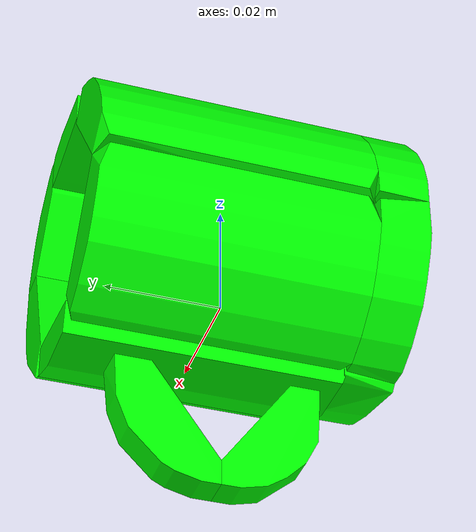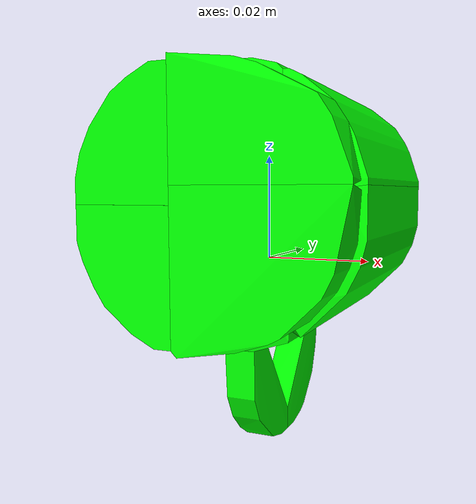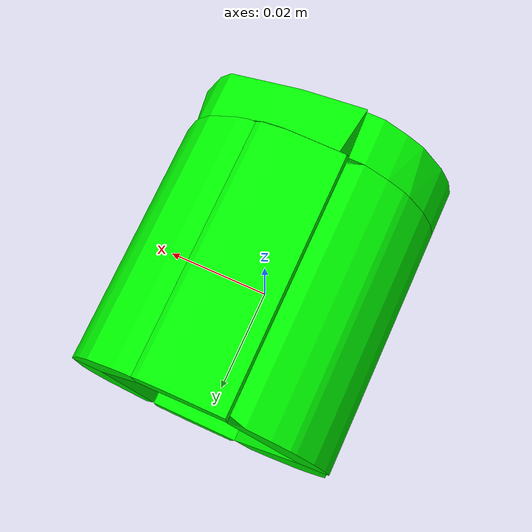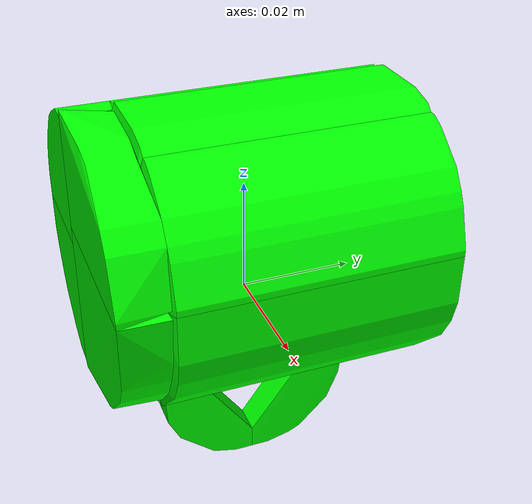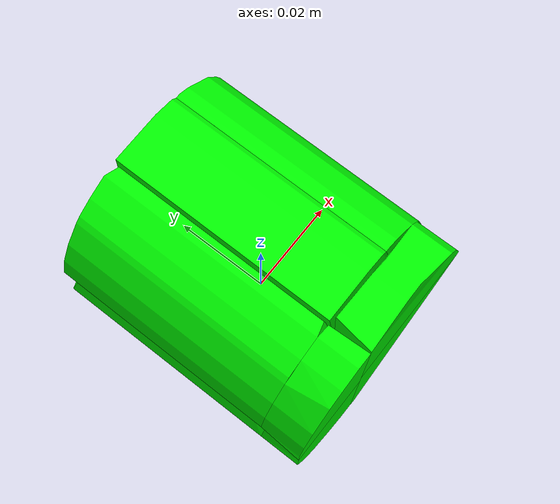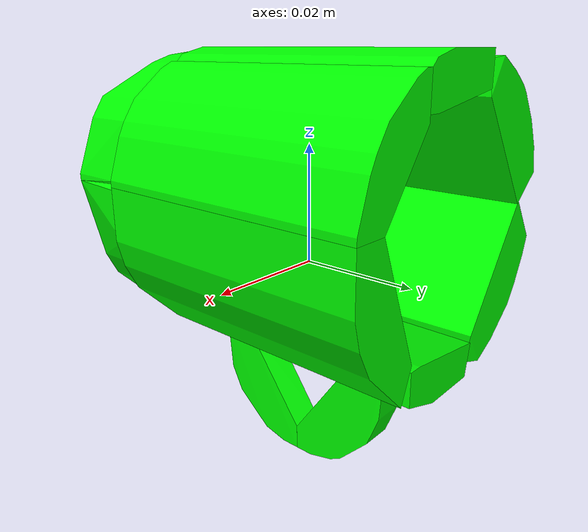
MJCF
<mujoco model="shapenet9-19">
  <asset>
    <mesh file="meshes/shapenet9-19/shapenet9-19_0.stl" name="shapenet9-19_0" scale="0.1 0.1 0.1"/>
    <mesh file="meshes/shapenet9-19/shapenet9-19_1.stl" name="shapenet9-19_1" scale="0.1 0.1 0.1"/>
    <mesh file="meshes/shapenet9-19/shapenet9-19_2.stl" name="shapenet9-19_2" scale="0.1 0.1 0.1"/>
    <mesh file="meshes/shapenet9-19/shapenet9-19_3.stl" name="shapenet9-19_3" scale="0.1 0.1 0.1"/>
    <mesh file="meshes/shapenet9-19/shapenet9-19_4.stl" name="shapenet9-19_4" scale="0.1 0.1 0.1"/>
    <mesh file="meshes/shapenet9-19/shapenet9-19_5.stl" name="shapenet9-19_5" scale="0.1 0.1 0.1"/>
    <mesh file="meshes/shapenet9-19/shapenet9-19_6.stl" name="shapenet9-19_6" scale="0.1 0.1 0.1"/>
    <mesh file="meshes/shapenet9-19/shapenet9-19_7.stl" name="shapenet9-19_7" scale="0.1 0.1 0.1"/>
    <mesh file="meshes/shapenet9-19/shapenet9-19_8.stl" name="shapenet9-19_8" scale="0.1 0.1 0.1"/>
    <mesh file="meshes/shapenet9-19/shapenet9-19_9.stl" name="shapenet9-19_9" scale="0.1 0.1 0.1"/>
    <mesh file="meshes/shapenet9-19/shapenet9-19_10.stl" name="shapenet9-19_10" scale="0.1 0.1 0.1"/>
    <mesh file="meshes/shapenet9-19/shapenet9-19_11.stl" name="shapenet9-19_11" scale="0.1 0.1 0.1"/>
  </asset>
  <worldbody>
    <body>
      <body name="collision">
        <geom pos="0 0 0" mesh="shapenet9-19_0" type="mesh" solimp="0.998 0.998 0.001" solref="0.001 1" density="100" friction="0.95 0.3 0.1" rgba="0 1 0 1" group="1" condim="4"/>
        <geom pos="0 0 0" mesh="shapenet9-19_1" type="mesh" solimp="0.998 0.998 0.001" solref="0.001 1" density="100" friction="0.95 0.3 0.1" rgba="0 1 0 1" group="1" condim="4"/>
        <geom pos="0 0 0" mesh="shapenet9-19_2" type="mesh" solimp="0.998 0.998 0.001" solref="0.001 1" density="100" friction="0.95 0.3 0.1" rgba="0 1 0 1" group="1" condim="4"/>
        <geom pos="0 0 0" mesh="shapenet9-19_3" type="mesh" solimp="0.998 0.998 0.001" solref="0.001 1" density="100" friction="0.95 0.3 0.1" rgba="0 1 0 1" group="1" condim="4"/>
        <geom pos="0 0 0" mesh="shapenet9-19_4" type="mesh" solimp="0.998 0.998 0.001" solref="0.001 1" density="100" friction="0.95 0.3 0.1" rgba="0 1 0 1" group="1" condim="4"/>
        <geom pos="0 0 0" mesh="shapenet9-19_5" type="mesh" solimp="0.998 0.998 0.001" solref="0.001 1" density="100" friction="0.95 0.3 0.1" rgba="0 1 0 1" group="1" condim="4"/>
        <geom pos="0 0 0" mesh="shapenet9-19_6" type="mesh" solimp="0.998 0.998 0.001" solref="0.001 1" density="100" friction="0.95 0.3 0.1" rgba="0 1 0 1" group="1" condim="4"/>
        <geom pos="0 0 0" mesh="shapenet9-19_7" type="mesh" solimp="0.998 0.998 0.001" solref="0.001 1" density="100" friction="0.95 0.3 0.1" rgba="0 1 0 1" group="1" condim="4"/>
        <geom pos="0 0 0" mesh="shapenet9-19_8" type="mesh" solimp="0.998 0.998 0.001" solref="0.001 1" density="100" friction="0.95 0.3 0.1" rgba="0 1 0 1" group="1" condim="4"/>
        <geom pos="0 0 0" mesh="shapenet9-19_9" type="mesh" solimp="0.998 0.998 0.001" solref="0.001 1" density="100" friction="0.95 0.3 0.1" rgba="0 1 0 1" group="1" condim="4"/>
        <geom pos="0 0 0" mesh="shapenet9-19_10" type="mesh" solimp="0.998 0.998 0.001" solref="0.001 1" density="100" friction="0.95 0.3 0.1" rgba="0 1 0 1" group="1" condim="4"/>
        <geom pos="0 0 0" mesh="shapenet9-19_11" type="mesh" solimp="0.998 0.998 0.001" solref="0.001 1" density="100" friction="0.95 0.3 0.1" rgba="0 1 0 1" group="1" condim="4"/>
      </body>
      <body name="visual">
        <geom pos="0 0 0" mesh="shapenet9-19_0" type="mesh" rgba="0 1 0 1" conaffinity="0" contype="0" group="0" mass="0.0001"/>
        <geom pos="0 0 0" mesh="shapenet9-19_1" type="mesh" rgba="0 1 0 1" conaffinity="0" contype="0" group="0" mass="0.0001"/>
        <geom pos="0 0 0" mesh="shapenet9-19_2" type="mesh" rgba="0 1 0 1" conaffinity="0" contype="0" group="0" mass="0.0001"/>
        <geom pos="0 0 0" mesh="shapenet9-19_3" type="mesh" rgba="0 1 0 1" conaffinity="0" contype="0" group="0" mass="0.0001"/>
        <geom pos="0 0 0" mesh="shapenet9-19_4" type="mesh" rgba="0 1 0 1" conaffinity="0" contype="0" group="0" mass="0.0001"/>
        <geom pos="0 0 0" mesh="shapenet9-19_5" type="mesh" rgba="0 1 0 1" conaffinity="0" contype="0" group="0" mass="0.0001"/>
        <geom pos="0 0 0" mesh="shapenet9-19_6" type="mesh" rgba="0 1 0 1" conaffinity="0" contype="0" group="0" mass="0.0001"/>
        <geom pos="0 0 0" mesh="shapenet9-19_7" type="mesh" rgba="0 1 0 1" conaffinity="0" contype="0" group="0" mass="0.0001"/>
        <geom pos="0 0 0" mesh="shapenet9-19_8" type="mesh" rgba="0 1 0 1" conaffinity="0" contype="0" group="0" mass="0.0001"/>
        <geom pos="0 0 0" mesh="shapenet9-19_9" type="mesh" rgba="0 1 0 1" conaffinity="0" contype="0" group="0" mass="0.0001"/>
        <geom pos="0 0 0" mesh="shapenet9-19_10" type="mesh" rgba="0 1 0 1" conaffinity="0" contype="0" group="0" mass="0.0001"/>
        <geom pos="0 0 0" mesh="shapenet9-19_11" type="mesh" rgba="0 1 0 1" conaffinity="0" contype="0" group="0" mass="0.0001"/>
      </body>
      <site rgba="0 0 0 0" size="0.005" pos="0 0 -0.06" name="bottom_site"/>
      <site rgba="0 0 0 0" size="0.005" pos="0 0 0.04" name="top_site"/>
      <site rgba="0 0 0 0" size="0.005" pos="0.025 0.025 0" name="horizontal_radius_site"/>
    </body>
  </worldbody>
</mujoco>
